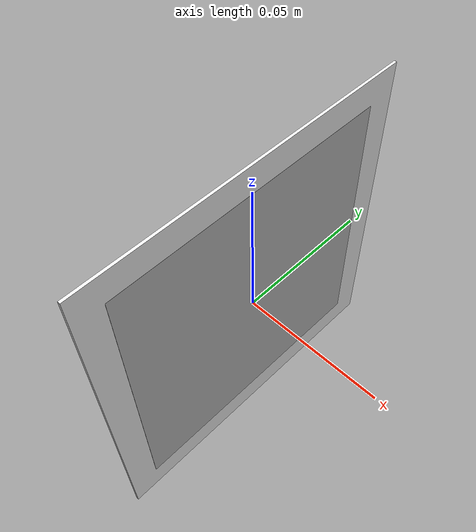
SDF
<?xml version="1.0" ?>
<sdf version="1.0">
  <model name="marker_plate">
    <static>true</static>
    <link name="marker_plate">
      <collision name="marker_plate">
        <pose>0 0 0 0 0 0</pose>
        <geometry>
          <box>
            <size>
              0.001 .12 .12
            </size>
          </box>
        </geometry>
      </collision>

      <visual name="marker_plate_marker">
        <pose>0 0 0 0 0 0</pose>
        <geometry>
          <box>
            <size>
              0.001 .1 .1
            </size>
          </box>
        </geometry>
        <material>
          <script>
            <uri>model://marker_plate/materials/scripts</uri>
            <uri>model://marker_plate/materials/textures</uri>
            <name>Aruco/582</name>
          </script>
        </material>
      </visual>

      <visual name="marker_plate_border">
        <pose>0 0 0 0 0 0</pose>
        <geometry>
          <box>
            <size>
              0.0009 .12 .12
            </size>
          </box>
        </geometry>
        <material>
          <script>
            <name>Gazebo/White</name>
          </script>
        </material>
      </visual>
    </link>
  </model>
</sdf>
